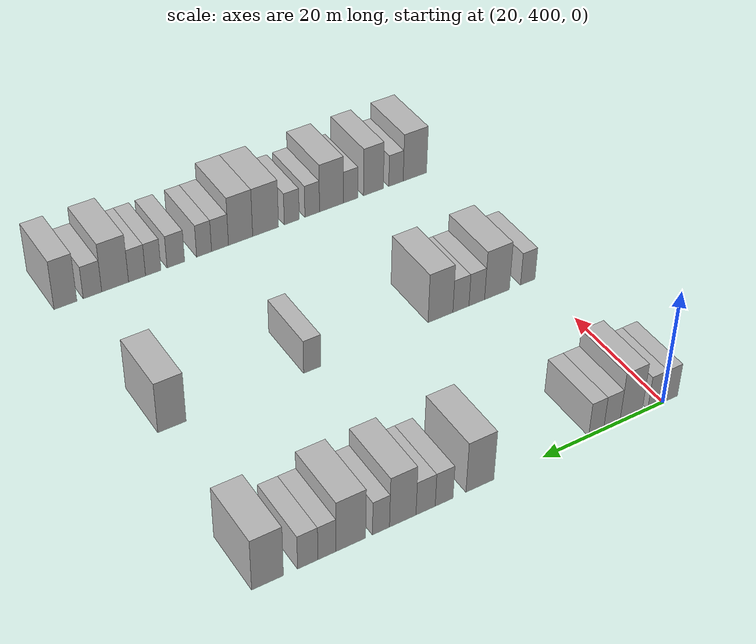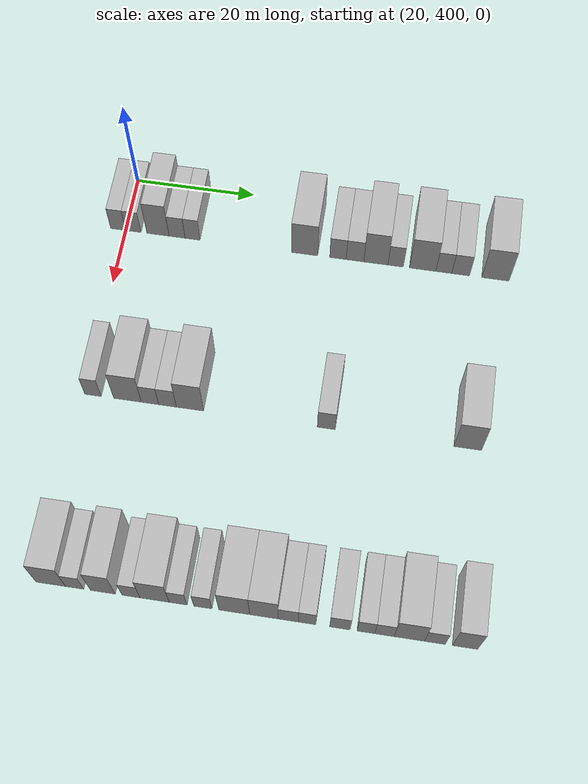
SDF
<sdf version="1.6">
 <world name="default">
  <model name="building_214">
   <static>1</static>
   <pose>25.0000 398.7284 0 0.000000 0.000000 0.000000</pose>
   <link name="link">
    <pose>0 0 3.00 0 0 0</pose>
    <collision name="collision"><geometry><box><size>10.0000 2.5392 6.0000</size></box></geometry></collision>
    <visual name="visual">
     <cast_shadows>0</cast_shadows>
     <geometry><box><size>10.0000 2.5392 6.0000</size></box></geometry>
     <material>
      <script>
       <uri>model://HANNAS_wall/materials/scripts</uri>
       <uri>model://HANNAS_wall/materials/textures</uri>
       <name>vrc/HANNAS_wall</name>
      </script>
     </material>
    </visual>
   </link>
  </model>
  <model name="building_215">
   <static>1</static>
   <pose>25.0000 401.2964 0 0.000000 0.000000 0.000000</pose>
   <link name="link">
    <pose>0 0 3.00 0 0 0</pose>
    <collision name="collision"><geometry><box><size>10.0000 2.5966 6.0000</size></box></geometry></collision>
    <visual name="visual">
     <cast_shadows>0</cast_shadows>
     <geometry><box><size>10.0000 2.5966 6.0000</size></box></geometry>
     <material>
      <script>
       <uri>model://HANNAS_wall/materials/scripts</uri>
       <uri>model://HANNAS_wall/materials/textures</uri>
       <name>vrc/HANNAS_wall</name>
      </script>
     </material>
    </visual>
   </link>
  </model>
  <model name="building_216">
   <static>1</static>
   <pose>25.0000 405.4718 0 0.000000 0.000000 0.000000</pose>
   <link name="link">
    <pose>0 0 4.50 0 0 0</pose>
    <collision name="collision"><geometry><box><size>10.0000 3.7543 9.0000</size></box></geometry></collision>
    <visual name="visual">
     <cast_shadows>0</cast_shadows>
     <geometry><box><size>10.0000 3.7543 9.0000</size></box></geometry>
     <material>
      <script>
       <uri>model://HANNAS_wall/materials/scripts</uri>
       <uri>model://HANNAS_wall/materials/textures</uri>
       <name>vrc/HANNAS_wall</name>
      </script>
     </material>
    </visual>
   </link>
  </model>
  <model name="building_217">
   <static>1</static>
   <pose>25.0000 408.7031 0 0.000000 0.000000 0.000000</pose>
   <link name="link">
    <pose>0 0 3.00 0 0 0</pose>
    <collision name="collision"><geometry><box><size>10.0000 2.7082 6.0000</size></box></geometry></collision>
    <visual name="visual">
     <cast_shadows>0</cast_shadows>
     <geometry><box><size>10.0000 2.7082 6.0000</size></box></geometry>
     <material>
      <script>
       <uri>model://HANNAS_wall/materials/scripts</uri>
       <uri>model://HANNAS_wall/materials/textures</uri>
       <name>vrc/HANNAS_wall</name>
      </script>
     </material>
    </visual>
   </link>
  </model>
  <model name="building_218">
   <static>1</static>
   <pose>25.0000 411.3138 0 0.000000 0.000000 0.000000</pose>
   <link name="link">
    <pose>0 0 3.00 0 0 0</pose>
    <collision name="collision"><geometry><box><size>10.0000 2.5133 6.0000</size></box></geometry></collision>
    <visual name="visual">
     <cast_shadows>0</cast_shadows>
     <geometry><box><size>10.0000 2.5133 6.0000</size></box></geometry>
     <material>
      <script>
       <uri>model://HANNAS_wall/materials/scripts</uri>
       <uri>model://HANNAS_wall/materials/textures</uri>
       <name>vrc/HANNAS_wall</name>
      </script>
     </material>
    </visual>
   </link>
  </model>
  <model name="building_219">
   <static>1</static>
   <pose>25.0000 430.1067 0 0.000000 0.000000 0.000000</pose>
   <link name="link">
    <pose>0 0 4.50 0 0 0</pose>
    <collision name="collision"><geometry><box><size>10.0000 4.3575 9.0000</size></box></geometry></collision>
    <visual name="visual">
     <cast_shadows>0</cast_shadows>
     <geometry><box><size>10.0000 4.3575 9.0000</size></box></geometry>
     <material>
      <script>
       <uri>model://HANNAS_wall/materials/scripts</uri>
       <uri>model://HANNAS_wall/materials/textures</uri>
       <name>vrc/HANNAS_wall</name>
      </script>
     </material>
    </visual>
   </link>
  </model>
  <model name="building_220">
   <static>1</static>
   <pose>25.0000 435.6535 0 0.000000 0.000000 0.000000</pose>
   <link name="link">
    <pose>0 0 3.00 0 0 0</pose>
    <collision name="collision"><geometry><box><size>10.0000 2.7361 6.0000</size></box></geometry></collision>
    <visual name="visual">
     <cast_shadows>0</cast_shadows>
     <geometry><box><size>10.0000 2.7361 6.0000</size></box></geometry>
     <material>
      <script>
       <uri>model://HANNAS_wall/materials/scripts</uri>
       <uri>model://HANNAS_wall/materials/textures</uri>
       <name>vrc/HANNAS_wall</name>
      </script>
     </material>
    </visual>
   </link>
  </model>
  <model name="building_221">
   <static>1</static>
   <pose>25.0000 438.4815 0 0.000000 0.000000 0.000000</pose>
   <link name="link">
    <pose>0 0 3.00 0 0 0</pose>
    <collision name="collision"><geometry><box><size>10.0000 2.9198 6.0000</size></box></geometry></collision>
    <visual name="visual">
     <cast_shadows>0</cast_shadows>
     <geometry><box><size>10.0000 2.9198 6.0000</size></box></geometry>
     <material>
      <script>
       <uri>model://HANNAS_wall/materials/scripts</uri>
       <uri>model://HANNAS_wall/materials/textures</uri>
       <name>vrc/HANNAS_wall</name>
      </script>
     </material>
    </visual>
   </link>
  </model>
  <model name="building_222">
   <static>1</static>
   <pose>25.0000 441.9347 0 0.000000 0.000000 0.000000</pose>
   <link name="link">
    <pose>0 0 4.50 0 0 0</pose>
    <collision name="collision"><geometry><box><size>10.0000 3.9866 9.0000</size></box></geometry></collision>
    <visual name="visual">
     <cast_shadows>0</cast_shadows>
     <geometry><box><size>10.0000 3.9866 9.0000</size></box></geometry>
     <material>
      <script>
       <uri>model://HANNAS_wall/materials/scripts</uri>
       <uri>model://HANNAS_wall/materials/textures</uri>
       <name>vrc/HANNAS_wall</name>
      </script>
     </material>
    </visual>
   </link>
  </model>
  <model name="building_223">
   <static>1</static>
   <pose>25.0000 445.1974 0 0.000000 0.000000 0.000000</pose>
   <link name="link">
    <pose>0 0 3.00 0 0 0</pose>
    <collision name="collision"><geometry><box><size>10.0000 2.5389 6.0000</size></box></geometry></collision>
    <visual name="visual">
     <cast_shadows>0</cast_shadows>
     <geometry><box><size>10.0000 2.5389 6.0000</size></box></geometry>
     <material>
      <script>
       <uri>model://HANNAS_wall/materials/scripts</uri>
       <uri>model://HANNAS_wall/materials/textures</uri>
       <name>vrc/HANNAS_wall</name>
      </script>
     </material>
    </visual>
   </link>
  </model>
  <model name="building_224">
   <static>1</static>
   <pose>25.0000 449.6411 0 0.000000 0.000000 0.000000</pose>
   <link name="link">
    <pose>0 0 4.50 0 0 0</pose>
    <collision name="collision"><geometry><box><size>10.0000 4.3483 9.0000</size></box></geometry></collision>
    <visual name="visual">
     <cast_shadows>0</cast_shadows>
     <geometry><box><size>10.0000 4.3483 9.0000</size></box></geometry>
     <material>
      <script>
       <uri>model://HANNAS_wall/materials/scripts</uri>
       <uri>model://HANNAS_wall/materials/textures</uri>
       <name>vrc/HANNAS_wall</name>
      </script>
     </material>
    </visual>
   </link>
  </model>
  <model name="building_225">
   <static>1</static>
   <pose>25.0000 453.1235 0 0.000000 0.000000 0.000000</pose>
   <link name="link">
    <pose>0 0 3.00 0 0 0</pose>
    <collision name="collision"><geometry><box><size>10.0000 2.6165 6.0000</size></box></geometry></collision>
    <visual name="visual">
     <cast_shadows>0</cast_shadows>
     <geometry><box><size>10.0000 2.6165 6.0000</size></box></geometry>
     <material>
      <script>
       <uri>model://HANNAS_wall/materials/scripts</uri>
       <uri>model://HANNAS_wall/materials/textures</uri>
       <name>vrc/HANNAS_wall</name>
      </script>
     </material>
    </visual>
   </link>
  </model>
  <model name="building_226">
   <static>1</static>
   <pose>25.0000 455.8854 0 0.000000 0.000000 0.000000</pose>
   <link name="link">
    <pose>0 0 3.00 0 0 0</pose>
    <collision name="collision"><geometry><box><size>10.0000 2.9074 6.0000</size></box></geometry></collision>
    <visual name="visual">
     <cast_shadows>0</cast_shadows>
     <geometry><box><size>10.0000 2.9074 6.0000</size></box></geometry>
     <material>
      <script>
       <uri>model://HANNAS_wall/materials/scripts</uri>
       <uri>model://HANNAS_wall/materials/textures</uri>
       <name>vrc/HANNAS_wall</name>
      </script>
     </material>
    </visual>
   </link>
  </model>
  <model name="building_227">
   <static>1</static>
   <pose>25.0000 461.5717 0 0.000000 0.000000 0.000000</pose>
   <link name="link">
    <pose>0 0 4.50 0 0 0</pose>
    <collision name="collision"><geometry><box><size>10.0000 4.4653 9.0000</size></box></geometry></collision>
    <visual name="visual">
     <cast_shadows>0</cast_shadows>
     <geometry><box><size>10.0000 4.4653 9.0000</size></box></geometry>
     <material>
      <script>
       <uri>model://HANNAS_wall/materials/scripts</uri>
       <uri>model://HANNAS_wall/materials/textures</uri>
       <name>vrc/HANNAS_wall</name>
      </script>
     </material>
    </visual>
   </link>
  </model>
  <model name="building_440">
   <static>1</static>
   <pose>55.0000 401.2370 0 0.000000 0.000000 0.000000</pose>
   <link name="link">
    <pose>0 0 3.00 0 0 0</pose>
    <collision name="collision"><geometry><box><size>10.0000 2.5956 6.0000</size></box></geometry></collision>
    <visual name="visual">
     <cast_shadows>0</cast_shadows>
     <geometry><box><size>10.0000 2.5956 6.0000</size></box></geometry>
     <material>
      <script>
       <uri>model://HANNAS_wall/materials/scripts</uri>
       <uri>model://HANNAS_wall/materials/textures</uri>
       <name>vrc/HANNAS_wall</name>
      </script>
     </material>
    </visual>
   </link>
  </model>
  <model name="building_441">
   <static>1</static>
   <pose>55.0000 406.7247 0 0.000000 0.000000 0.000000</pose>
   <link name="link">
    <pose>0 0 4.50 0 0 0</pose>
    <collision name="collision"><geometry><box><size>10.0000 4.3798 9.0000</size></box></geometry></collision>
    <visual name="visual">
     <cast_shadows>0</cast_shadows>
     <geometry><box><size>10.0000 4.3798 9.0000</size></box></geometry>
     <material>
      <script>
       <uri>model://HANNAS_wall/materials/scripts</uri>
       <uri>model://HANNAS_wall/materials/textures</uri>
       <name>vrc/HANNAS_wall</name>
      </script>
     </material>
    </visual>
   </link>
  </model>
  <model name="building_442">
   <static>1</static>
   <pose>55.0000 410.2827 0 0.000000 0.000000 0.000000</pose>
   <link name="link">
    <pose>0 0 3.00 0 0 0</pose>
    <collision name="collision"><geometry><box><size>10.0000 2.7362 6.0000</size></box></geometry></collision>
    <visual name="visual">
     <cast_shadows>0</cast_shadows>
     <geometry><box><size>10.0000 2.7362 6.0000</size></box></geometry>
     <material>
      <script>
       <uri>model://HANNAS_wall/materials/scripts</uri>
       <uri>model://HANNAS_wall/materials/textures</uri>
       <name>vrc/HANNAS_wall</name>
      </script>
     </material>
    </visual>
   </link>
  </model>
  <model name="building_443">
   <static>1</static>
   <pose>55.0000 413.0465 0 0.000000 0.000000 0.000000</pose>
   <link name="link">
    <pose>0 0 3.00 0 0 0</pose>
    <collision name="collision"><geometry><box><size>10.0000 2.7914 6.0000</size></box></geometry></collision>
    <visual name="visual">
     <cast_shadows>0</cast_shadows>
     <geometry><box><size>10.0000 2.7914 6.0000</size></box></geometry>
     <material>
      <script>
       <uri>model://HANNAS_wall/materials/scripts</uri>
       <uri>model://HANNAS_wall/materials/textures</uri>
       <name>vrc/HANNAS_wall</name>
      </script>
     </material>
    </visual>
   </link>
  </model>
  <model name="building_444">
   <static>1</static>
   <pose>55.0000 416.5782 0 0.000000 0.000000 0.000000</pose>
   <link name="link">
    <pose>0 0 4.50 0 0 0</pose>
    <collision name="collision"><geometry><box><size>10.0000 4.2719 9.0000</size></box></geometry></collision>
    <visual name="visual">
     <cast_shadows>0</cast_shadows>
     <geometry><box><size>10.0000 4.2719 9.0000</size></box></geometry>
     <material>
      <script>
       <uri>model://HANNAS_wall/materials/scripts</uri>
       <uri>model://HANNAS_wall/materials/textures</uri>
       <name>vrc/HANNAS_wall</name>
      </script>
     </material>
    </visual>
   </link>
  </model>
  <model name="building_445">
   <static>1</static>
   <pose>55.0000 437.8885 0 0.000000 0.000000 0.000000</pose>
   <link name="link">
    <pose>0 0 3.00 0 0 0</pose>
    <collision name="collision"><geometry><box><size>10.0000 2.7829 6.0000</size></box></geometry></collision>
    <visual name="visual">
     <cast_shadows>0</cast_shadows>
     <geometry><box><size>10.0000 2.7829 6.0000</size></box></geometry>
     <material>
      <script>
       <uri>model://HANNAS_wall/materials/scripts</uri>
       <uri>model://HANNAS_wall/materials/textures</uri>
       <name>vrc/HANNAS_wall</name>
      </script>
     </material>
    </visual>
   </link>
  </model>
  <model name="building_446">
   <static>1</static>
   <pose>55.0000 459.6606 0 0.000000 0.000000 0.000000</pose>
   <link name="link">
    <pose>0 0 4.50 0 0 0</pose>
    <collision name="collision"><geometry><box><size>10.0000 4.2538 9.0000</size></box></geometry></collision>
    <visual name="visual">
     <cast_shadows>0</cast_shadows>
     <geometry><box><size>10.0000 4.2538 9.0000</size></box></geometry>
     <material>
      <script>
       <uri>model://HANNAS_wall/materials/scripts</uri>
       <uri>model://HANNAS_wall/materials/textures</uri>
       <name>vrc/HANNAS_wall</name>
      </script>
     </material>
    </visual>
   </link>
  </model>
  <model name="building_650">
   <static>1</static>
   <pose>85.0000 401.7893 0 0.000000 0.000000 0.000000</pose>
   <link name="link">
    <pose>0 0 4.50 0 0 0</pose>
    <collision name="collision"><geometry><box><size>10.0000 4.3860 9.0000</size></box></geometry></collision>
    <visual name="visual">
     <cast_shadows>0</cast_shadows>
     <geometry><box><size>10.0000 4.3860 9.0000</size></box></geometry>
     <material>
      <script>
       <uri>model://HANNAS_wall/materials/scripts</uri>
       <uri>model://HANNAS_wall/materials/textures</uri>
       <name>vrc/HANNAS_wall</name>
      </script>
     </material>
    </visual>
   </link>
  </model>
  <model name="building_651">
   <static>1</static>
   <pose>85.0000 405.3227 0 0.000000 0.000000 0.000000</pose>
   <link name="link">
    <pose>0 0 3.00 0 0 0</pose>
    <collision name="collision"><geometry><box><size>10.0000 2.6808 6.0000</size></box></geometry></collision>
    <visual name="visual">
     <cast_shadows>0</cast_shadows>
     <geometry><box><size>10.0000 2.6808 6.0000</size></box></geometry>
     <material>
      <script>
       <uri>model://HANNAS_wall/materials/scripts</uri>
       <uri>model://HANNAS_wall/materials/textures</uri>
       <name>vrc/HANNAS_wall</name>
      </script>
     </material>
    </visual>
   </link>
  </model>
  <model name="building_652">
   <static>1</static>
   <pose>85.0000 409.4919 0 0.000000 0.000000 0.000000</pose>
   <link name="link">
    <pose>0 0 4.50 0 0 0</pose>
    <collision name="collision"><geometry><box><size>10.0000 3.6576 9.0000</size></box></geometry></collision>
    <visual name="visual">
     <cast_shadows>0</cast_shadows>
     <geometry><box><size>10.0000 3.6576 9.0000</size></box></geometry>
     <material>
      <script>
       <uri>model://HANNAS_wall/materials/scripts</uri>
       <uri>model://HANNAS_wall/materials/textures</uri>
       <name>vrc/HANNAS_wall</name>
      </script>
     </material>
    </visual>
   </link>
  </model>
  <model name="building_653">
   <static>1</static>
   <pose>85.0000 413.6516 0 0.000000 0.000000 0.000000</pose>
   <link name="link">
    <pose>0 0 3.00 0 0 0</pose>
    <collision name="collision"><geometry><box><size>10.0000 2.6617 6.0000</size></box></geometry></collision>
    <visual name="visual">
     <cast_shadows>0</cast_shadows>
     <geometry><box><size>10.0000 2.6617 6.0000</size></box></geometry>
     <material>
      <script>
       <uri>model://HANNAS_wall/materials/scripts</uri>
       <uri>model://HANNAS_wall/materials/textures</uri>
       <name>vrc/HANNAS_wall</name>
      </script>
     </material>
    </visual>
   </link>
  </model>
  <model name="building_654">
   <static>1</static>
   <pose>85.0000 417.1267 0 0.000000 0.000000 0.000000</pose>
   <link name="link">
    <pose>0 0 4.50 0 0 0</pose>
    <collision name="collision"><geometry><box><size>10.0000 4.2886 9.0000</size></box></geometry></collision>
    <visual name="visual">
     <cast_shadows>0</cast_shadows>
     <geometry><box><size>10.0000 4.2886 9.0000</size></box></geometry>
     <material>
      <script>
       <uri>model://HANNAS_wall/materials/scripts</uri>
       <uri>model://HANNAS_wall/materials/textures</uri>
       <name>vrc/HANNAS_wall</name>
      </script>
     </material>
    </visual>
   </link>
  </model>
  <model name="building_655">
   <static>1</static>
   <pose>85.0000 420.5681 0 0.000000 0.000000 0.000000</pose>
   <link name="link">
    <pose>0 0 3.00 0 0 0</pose>
    <collision name="collision"><geometry><box><size>10.0000 2.5942 6.0000</size></box></geometry></collision>
    <visual name="visual">
     <cast_shadows>0</cast_shadows>
     <geometry><box><size>10.0000 2.5942 6.0000</size></box></geometry>
     <material>
      <script>
       <uri>model://HANNAS_wall/materials/scripts</uri>
       <uri>model://HANNAS_wall/materials/textures</uri>
       <name>vrc/HANNAS_wall</name>
      </script>
     </material>
    </visual>
   </link>
  </model>
  <model name="building_656">
   <static>1</static>
   <pose>85.0000 424.1833 0 0.000000 0.000000 0.000000</pose>
   <link name="link">
    <pose>0 0 3.00 0 0 0</pose>
    <collision name="collision"><geometry><box><size>10.0000 2.6361 6.0000</size></box></geometry></collision>
    <visual name="visual">
     <cast_shadows>0</cast_shadows>
     <geometry><box><size>10.0000 2.6361 6.0000</size></box></geometry>
     <material>
      <script>
       <uri>model://HANNAS_wall/materials/scripts</uri>
       <uri>model://HANNAS_wall/materials/textures</uri>
       <name>vrc/HANNAS_wall</name>
      </script>
     </material>
    </visual>
   </link>
  </model>
  <model name="building_657">
   <static>1</static>
   <pose>85.0000 428.7484 0 0.000000 0.000000 0.000000</pose>
   <link name="link">
    <pose>0 0 4.50 0 0 0</pose>
    <collision name="collision"><geometry><box><size>10.0000 4.4941 9.0000</size></box></geometry></collision>
    <visual name="visual">
     <cast_shadows>0</cast_shadows>
     <geometry><box><size>10.0000 4.4941 9.0000</size></box></geometry>
     <material>
      <script>
       <uri>model://HANNAS_wall/materials/scripts</uri>
       <uri>model://HANNAS_wall/materials/textures</uri>
       <name>vrc/HANNAS_wall</name>
      </script>
     </material>
    </visual>
   </link>
  </model>
  <model name="building_658">
   <static>1</static>
   <pose>85.0000 433.0735 0 0.000000 0.000000 0.000000</pose>
   <link name="link">
    <pose>0 0 4.50 0 0 0</pose>
    <collision name="collision"><geometry><box><size>10.0000 4.1562 9.0000</size></box></geometry></collision>
    <visual name="visual">
     <cast_shadows>0</cast_shadows>
     <geometry><box><size>10.0000 4.1562 9.0000</size></box></geometry>
     <material>
      <script>
       <uri>model://HANNAS_wall/materials/scripts</uri>
       <uri>model://HANNAS_wall/materials/textures</uri>
       <name>vrc/HANNAS_wall</name>
      </script>
     </material>
    </visual>
   </link>
  </model>
  <model name="building_659">
   <static>1</static>
   <pose>85.0000 436.5887 0 0.000000 0.000000 0.000000</pose>
   <link name="link">
    <pose>0 0 3.00 0 0 0</pose>
    <collision name="collision"><geometry><box><size>10.0000 2.8742 6.0000</size></box></geometry></collision>
    <visual name="visual">
     <cast_shadows>0</cast_shadows>
     <geometry><box><size>10.0000 2.8742 6.0000</size></box></geometry>
     <material>
      <script>
       <uri>model://HANNAS_wall/materials/scripts</uri>
       <uri>model://HANNAS_wall/materials/textures</uri>
       <name>vrc/HANNAS_wall</name>
      </script>
     </material>
    </visual>
   </link>
  </model>
  <model name="building_660">
   <static>1</static>
   <pose>85.0000 439.2887 0 0.000000 0.000000 0.000000</pose>
   <link name="link">
    <pose>0 0 3.00 0 0 0</pose>
    <collision name="collision"><geometry><box><size>10.0000 2.5259 6.0000</size></box></geometry></collision>
    <visual name="visual">
     <cast_shadows>0</cast_shadows>
     <geometry><box><size>10.0000 2.5259 6.0000</size></box></geometry>
     <material>
      <script>
       <uri>model://HANNAS_wall/materials/scripts</uri>
       <uri>model://HANNAS_wall/materials/textures</uri>
       <name>vrc/HANNAS_wall</name>
      </script>
     </material>
    </visual>
   </link>
  </model>
  <model name="building_661">
   <static>1</static>
   <pose>85.0000 444.0174 0 0.000000 0.000000 0.000000</pose>
   <link name="link">
    <pose>0 0 3.00 0 0 0</pose>
    <collision name="collision"><geometry><box><size>10.0000 2.9313 6.0000</size></box></geometry></collision>
    <visual name="visual">
     <cast_shadows>0</cast_shadows>
     <geometry><box><size>10.0000 2.9313 6.0000</size></box></geometry>
     <material>
      <script>
       <uri>model://HANNAS_wall/materials/scripts</uri>
       <uri>model://HANNAS_wall/materials/textures</uri>
       <name>vrc/HANNAS_wall</name>
      </script>
     </material>
    </visual>
   </link>
  </model>
  <model name="building_662">
   <static>1</static>
   <pose>85.0000 447.7524 0 0.000000 0.000000 0.000000</pose>
   <link name="link">
    <pose>0 0 3.00 0 0 0</pose>
    <collision name="collision"><geometry><box><size>10.0000 2.5388 6.0000</size></box></geometry></collision>
    <visual name="visual">
     <cast_shadows>0</cast_shadows>
     <geometry><box><size>10.0000 2.5388 6.0000</size></box></geometry>
     <material>
      <script>
       <uri>model://HANNAS_wall/materials/scripts</uri>
       <uri>model://HANNAS_wall/materials/textures</uri>
       <name>vrc/HANNAS_wall</name>
      </script>
     </material>
    </visual>
   </link>
  </model>
  <model name="building_663">
   <static>1</static>
   <pose>85.0000 450.4069 0 0.000000 0.000000 0.000000</pose>
   <link name="link">
    <pose>0 0 3.00 0 0 0</pose>
    <collision name="collision"><geometry><box><size>10.0000 2.7702 6.0000</size></box></geometry></collision>
    <visual name="visual">
     <cast_shadows>0</cast_shadows>
     <geometry><box><size>10.0000 2.7702 6.0000</size></box></geometry>
     <material>
      <script>
       <uri>model://HANNAS_wall/materials/scripts</uri>
       <uri>model://HANNAS_wall/materials/textures</uri>
       <name>vrc/HANNAS_wall</name>
      </script>
     </material>
    </visual>
   </link>
  </model>
  <model name="building_664">
   <static>1</static>
   <pose>85.0000 453.9564 0 0.000000 0.000000 0.000000</pose>
   <link name="link">
    <pose>0 0 4.50 0 0 0</pose>
    <collision name="collision"><geometry><box><size>10.0000 4.3289 9.0000</size></box></geometry></collision>
    <visual name="visual">
     <cast_shadows>0</cast_shadows>
     <geometry><box><size>10.0000 4.3289 9.0000</size></box></geometry>
     <material>
      <script>
       <uri>model://HANNAS_wall/materials/scripts</uri>
       <uri>model://HANNAS_wall/materials/textures</uri>
       <name>vrc/HANNAS_wall</name>
      </script>
     </material>
    </visual>
   </link>
  </model>
  <model name="building_665">
   <static>1</static>
   <pose>85.0000 457.6031 0 0.000000 0.000000 0.000000</pose>
   <link name="link">
    <pose>0 0 3.00 0 0 0</pose>
    <collision name="collision"><geometry><box><size>10.0000 2.9645 6.0000</size></box></geometry></collision>
    <visual name="visual">
     <cast_shadows>0</cast_shadows>
     <geometry><box><size>10.0000 2.9645 6.0000</size></box></geometry>
     <material>
      <script>
       <uri>model://HANNAS_wall/materials/scripts</uri>
       <uri>model://HANNAS_wall/materials/textures</uri>
       <name>vrc/HANNAS_wall</name>
      </script>
     </material>
    </visual>
   </link>
  </model>
  <model name="building_666">
   <static>1</static>
   <pose>85.0000 461.8909 0 0.000000 0.000000 0.000000</pose>
   <link name="link">
    <pose>0 0 4.50 0 0 0</pose>
    <collision name="collision"><geometry><box><size>10.0000 3.6112 9.0000</size></box></geometry></collision>
    <visual name="visual">
     <cast_shadows>0</cast_shadows>
     <geometry><box><size>10.0000 3.6112 9.0000</size></box></geometry>
     <material>
      <script>
       <uri>model://HANNAS_wall/materials/scripts</uri>
       <uri>model://HANNAS_wall/materials/textures</uri>
       <name>vrc/HANNAS_wall</name>
      </script>
     </material>
    </visual>
   </link>
  </model>
 </world>
</sdf>
